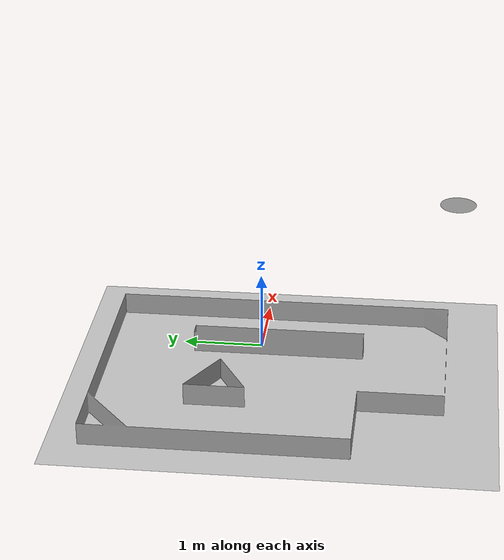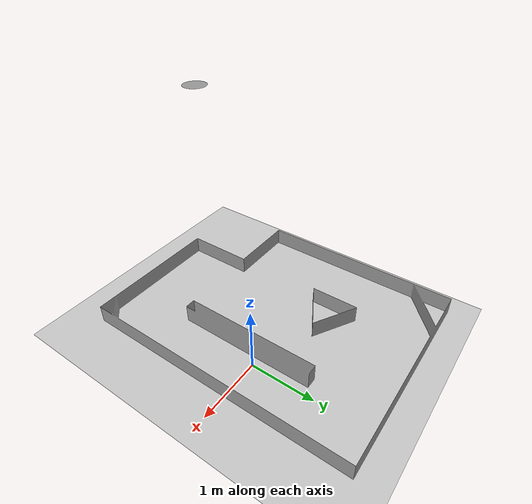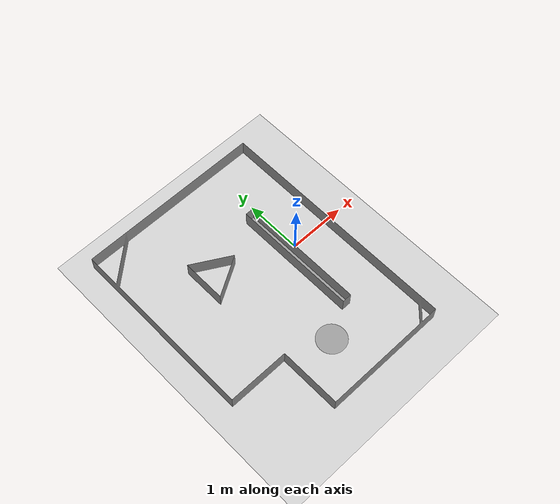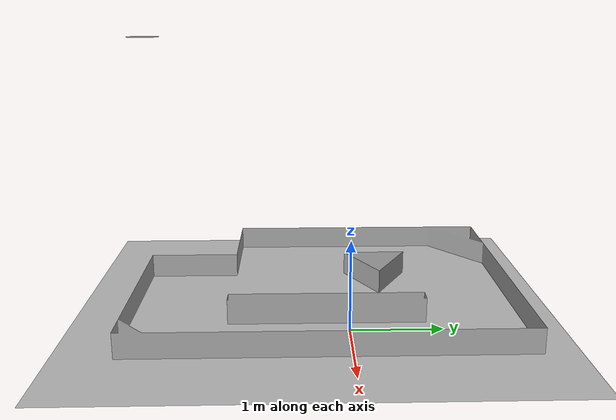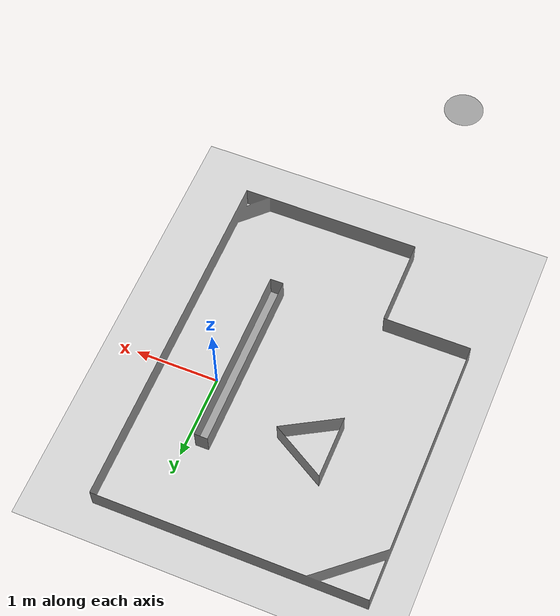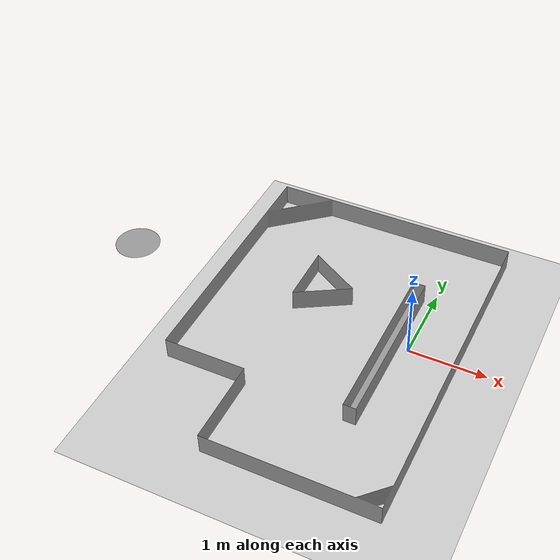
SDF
<sdf version='1.4'>
  <world name='default'>

    <plugin name='gazebo_occupancy_map' filename='libgazebo_2Dmap_plugin.so'>
        <map_resolution>0.05</map_resolution>
        <map_height>0.132</map_height>   <!--132 height of lidar frame from ground-->
        <map_size_x>10</map_size_x>
        <map_size_y>10</map_size_y>
        <init_robot_x>-2.0</init_robot_x>
        <init_robot_y>-0.5</init_robot_y>
    </plugin>

    <!-- A global light source -->
    <include>
      <uri>model://sun</uri>
    </include>

    <include>
      <uri>model://ground_plane</uri>
    </include>

    <physics type="ode">
      <real_time_update_rate>1000.0</real_time_update_rate>
      <max_step_size>0.001</max_step_size>
      <real_time_factor>1</real_time_factor>
      <ode>
        <solver>
          <type>quick</type>
          <iters>150</iters>
          <precon_iters>0</precon_iters>
          <sor>1.400000</sor>
          <use_dynamic_moi_rescaling>1</use_dynamic_moi_rescaling>
        </solver>
        <constraints>
          <cfm>0.00001</cfm>
          <erp>0.2</erp>
          <contact_max_correcting_vel>2000.000000</contact_max_correcting_vel>
          <contact_surface_layer>0.01000</contact_surface_layer>
        </constraints>
      </ode>
    </physics>

    <include>
      <pose>-1.5 -1.5 0.03 0 0 0</pose>
      <uri>model://arena</uri>
    </include>

    <scene>
      <ambient>0.4 0.4 0.4 1</ambient>
      <background>0.7 0.7 0.7 1</background>
      <shadows>true</shadows>
    </scene>

    <gui fullscreen='0'>
      <camera name='user_camera'>
        <pose>0.0 0.0 17.0 0 1.5708 0</pose>
        <view_controller>orbit</view_controller>
      </camera>
    </gui>
  </world>
</sdf>

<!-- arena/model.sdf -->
<sdf version='1.7'>
  <model name='arena'>
    <link name='link_0'>
      <inertial>
        <mass>1</mass>
        <inertia>
          <ixx>0.166667</ixx>
          <ixy>0</ixy>
          <ixz>0</ixz>
          <iyy>0.166667</iyy>
          <iyz>0</iyz>
          <izz>0.166667</izz>
        </inertia>
        <pose>0 0 0 0 0 0</pose>
      </inertial>
      <pose>0 0 0 0 0 0</pose>
      <gravity>1</gravity>
      <self_collide>0</self_collide>
      <kinematic>1</kinematic>
      <enable_wind>0</enable_wind>
      <visual name='visual'>
        <pose>0 0 0 0 -0 0</pose>
        <geometry>
          <mesh>
            <uri>./arena-no-floor.stl</uri>
            <scale>0.001 0.001 0.001</scale>
          </mesh>
        </geometry>

        <material>
          <script>
            <uri>file://media/materials/scripts/gazebo.material</uri>
            <name>Gazebo/Grey</name>
          </script>
        </material>
        <transparency>0</transparency>
        <cast_shadows>1</cast_shadows>
      </visual>
      <collision name='collision'>
        <laser_retro>0</laser_retro>
        <max_contacts>10</max_contacts>
        <pose>0 0 0 0 0 0</pose>
        <geometry>
          <mesh>
            <uri>./arena-no-floor.stl</uri>
            <scale>0.001 0.001 0.001</scale>
          </mesh>
        </geometry>
        <surface>
          <friction>
            <ode>
              <mu>1</mu>
              <mu2>1</mu2>
              <fdir1>0 0 0</fdir1>
              <slip1>0</slip1>
              <slip2>0</slip2>
            </ode>
            <torsional>
              <coefficient>1</coefficient>
              <patch_radius>0</patch_radius>
              <surface_radius>0</surface_radius>
              <use_patch_radius>1</use_patch_radius>
              <ode>
                <slip>0</slip>
              </ode>
            </torsional>
          </friction>
          <bounce>
            <restitution_coefficient>0</restitution_coefficient>
            <threshold>1e+06</threshold>
          </bounce>
          <contact>
            <collide_without_contact>0</collide_without_contact>
            <collide_without_contact_bitmask>1</collide_without_contact_bitmask>
            <collide_bitmask>1</collide_bitmask>
            <ode>
              <soft_cfm>0</soft_cfm>
              <soft_erp>0.2</soft_erp>
              <kp>1e+13</kp>
              <kd>1</kd>
              <max_vel>0.01</max_vel>
              <min_depth>0</min_depth>
            </ode>
            <bullet>
              <split_impulse>1</split_impulse>
              <split_impulse_penetration_threshold>-0.01</split_impulse_penetration_threshold>
              <soft_cfm>0</soft_cfm>
              <soft_erp>0.2</soft_erp>
              <kp>1e+13</kp>
              <kd>1</kd>
            </bullet>
          </contact>
        </surface>
      </collision>
    </link>
    <static>1</static>
    <allow_auto_disable>1</allow_auto_disable>
  </model>
</sdf>
